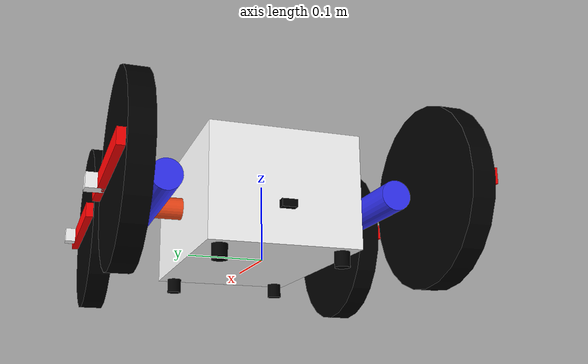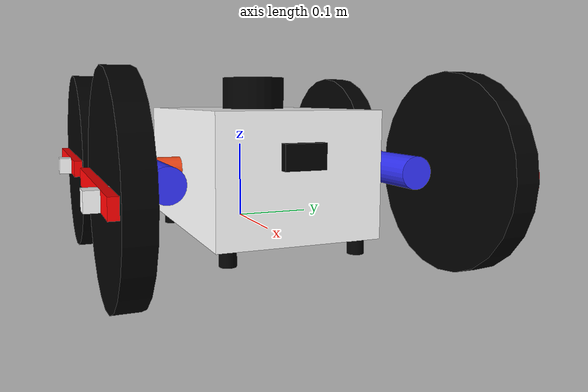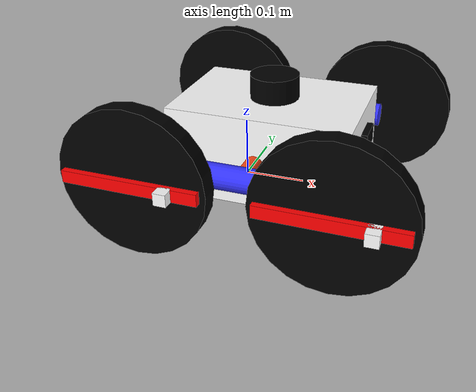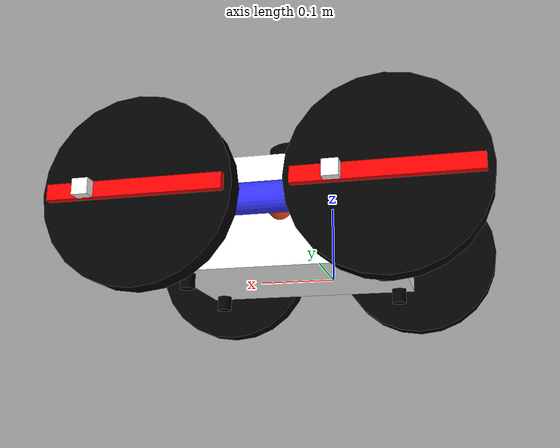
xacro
<?xml version="1.0"?>
<robot xmlns:xacro="http://www.ros.org/wiki/xacro" name="aeroterrabot">

    <!-- ── Xacro arguments ─────────────────────────────────────────────── -->
    <xacro:arg name="use_sim_time" default="false" />
    <xacro:property name="use_sim" value="$(arg use_sim_time)" />

    <!-- Include the core robot components -->
    <xacro:include filename="robot_core.xacro" />

    <!-- Include the materials for visuals -->
    <xacro:include filename="materials.xacro" />

    <!-- Include the ros2_control configuration -->
    <xacro:include filename="ros2_control.xacro" />

    <!-- Include the sensors configuration -->
    <xacro:include filename="sensors.xacro" />

    <!-- Parameterize the hardware interface -->
    <xacro:aeroterrabot_ros2_control
        serial_port="/dev/ttyACM0"
        baud_rate="115200"
        use_sim="${use_sim}"
    />

</robot>

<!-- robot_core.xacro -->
<robot xmlns:xacro="http://www.ros.org/wiki/xacro">

  <xacro:include filename="inertias.xacro" />

  <!-- ── BASE LINKS ────────────────────────────────────────────────────────── -->
  <link name="base_link"></link>

  <joint name="base_footprint_joint" type="fixed">
    <parent link="base_link"/>
    <child link="base_footprint"/>
    <origin xyz="0 0 0" rpy="0 0 0"/>
  </joint>

  <link name="base_footprint"></link>

  <joint name="chassis_joint" type="fixed">
    <parent link="base_link"/>
    <child link="chassis"/>
    <origin xyz="-0.1 0 0"/>
  </joint>

  <link name="chassis">
    <visual>
      <origin xyz="0.15 0 0.075"/>
      <geometry>
        <box size="0.3 0.2 0.15"/>
      </geometry>
      <material name="white"/>
    </visual>
    <collision>
      <origin xyz="0.15 0 0.075"/>
      <geometry>
        <box size="0.3 0.2 0.15"/>
      </geometry>
    </collision>
    <xacro:inertial_box mass="1.0" x="0.3" y="0.2" z="0.15">
      <origin xyz="0.15 0 0.075" rpy="0 0 0"/>
    </xacro:inertial_box>
  </link>

  <!-- ── LANDING GEAR ────────────────────────────────────────────────────────── -->
  <xacro:macro name="landing_gear_leg" params="name x y">
    <joint name="landing_gear_${name}_joint" type="fixed">
      <parent link="chassis"/>
      <child link="landing_gear_${name}"/>
      <origin xyz="${x} ${y} -0.01" rpy="0 0 0"/>
    </joint>

    <link name="landing_gear_${name}">
      <visual>
        <origin xyz="0 0 0" rpy="0 0 0"/>
        <geometry><cylinder radius="0.01" length="0.02"/></geometry>
        <material name="black"/>
      </visual>
      <collision>
        <origin xyz="0 0 0" rpy="0 0 0"/>
        <geometry><cylinder radius="0.01" length="0.02"/></geometry>
      </collision>
      <xacro:inertial_cylinder mass="0.05" length="0.02" radius="0.01">
        <origin xyz="0 0 0" rpy="0 0 0"/>
      </xacro:inertial_cylinder>
    </link>
  </xacro:macro>

  <xacro:landing_gear_leg name="front_left" x="0.28" y="0.08" />
  <xacro:landing_gear_leg name="front_right" x="0.28" y="-0.08" />
  <xacro:landing_gear_leg name="rear_left" x="0.02" y="0.08" />
  <xacro:landing_gear_leg name="rear_right" x="0.02" y="-0.08" />

  <!-- ── LEFT MORPHING MECHANISM ────────────────────────────────────────────── -->
  <!-- Actuator pushes left boom outwards. Servo rolls it 90 degrees to point wheels UP. -->
  <joint name="linear_actuator_1_joint" type="prismatic">
    <parent link="chassis"/>
    <child link="left_extension_arm"/>
    <origin xyz="0.15 0.1 0.075" rpy="0 0 0"/>
    <axis xyz="0 1 0"/>
    <limit lower="0" upper="0.1" effort="10" velocity="0.05"/>
  </joint>

  <link name="left_extension_arm">
    <visual>
      <origin xyz="0 0.025 0" rpy="1.5708 0 0"/>
      <geometry><cylinder length="0.05" radius="0.015"/></geometry>
      <material name="orange"/>
    </visual>
    <xacro:inertial_cylinder mass="0.1" length="0.05" radius="0.015">
      <origin xyz="0 0.025 0" rpy="1.5708 0 0"/>
    </xacro:inertial_cylinder>
  </link>

  <joint name="morph_servo_1_joint" type="revolute">
    <parent link="left_extension_arm"/>
    <child link="left_boom"/>
    <origin xyz="0 0.05 0" rpy="0 0 0"/>
    <axis xyz="1 0 0"/>
    <limit lower="0" upper="1.5708" effort="10" velocity="1.0"/>
  </joint>

  <link name="left_boom">
    <visual>
      <origin xyz="0 0 0" rpy="0 1.5708 0"/>
      <geometry><cylinder length="0.3" radius="0.02"/></geometry>
      <material name="blue"/>
    </visual>
    <xacro:inertial_cylinder mass="0.2" length="0.3" radius="0.02">
      <origin xyz="0 0 0" rpy="0 1.5708 0"/>
    </xacro:inertial_cylinder>
  </link>

  <!-- ── RIGHT MORPHING MECHANISM ───────────────────────────────────────────── -->

  <joint name="linear_actuator_2_joint" type="prismatic">
    <parent link="chassis"/>
    <child link="right_extension_arm"/>
    <origin xyz="0.15 -0.1 0.075" rpy="0 0 0"/>
    <axis xyz="0 -1 0"/>
    <limit lower="0" upper="0.1" effort="10" velocity="0.05"/>
  </joint>

  <link name="right_extension_arm">
    <visual>
      <origin xyz="0 -0.025 0" rpy="1.5708 0 0"/>
      <geometry><cylinder length="0.05" radius="0.015"/></geometry>
      <material name="orange"/>
    </visual>
    <xacro:inertial_cylinder mass="0.1" length="0.05" radius="0.015">
      <origin xyz="0 -0.025 0" rpy="1.5708 0 0"/>
    </xacro:inertial_cylinder>
  </link>

  <joint name="morph_servo_2_joint" type="revolute">
    <parent link="right_extension_arm"/>
    <child link="right_boom"/>
    <origin xyz="0 -0.05 0" rpy="0 0 0"/>
    <axis xyz="-1 0 0"/>
    <limit lower="0" upper="1.5708" effort="10" velocity="1.0"/>
  </joint>

  <link name="right_boom">
    <visual>
      <origin xyz="0 0 0" rpy="0 1.5708 0"/>
      <geometry><cylinder length="0.3" radius="0.02"/></geometry>
      <material name="blue"/>
    </visual>
    <xacro:inertial_cylinder mass="0.2" length="0.3" radius="0.02">
      <origin xyz="0 0 0" rpy="0 1.5708 0"/>
    </xacro:inertial_cylinder>
  </link>

  <!-- ── WHEELS & PROPELLOR GUARDS (R=0.12) ────────────────────────────────── -->
  <!-- We use continuous joints to permit driving. -->

  <joint name="front_left_wheel_joint" type="continuous">
    <parent link="left_boom"/>
    <child link="front_left_wheel"/>
    <origin xyz="0.15 0.05 0" rpy="-1.5708 0 0"/>
    <axis xyz="0 0 1"/>
  </joint>

  <link name="front_left_wheel">
    <visual>
      <geometry><cylinder length="0.03" radius="0.12"/></geometry>
      <material name="black"/>
    </visual>
    <!-- Spoke to make rotation visible -->
    <visual>
      <origin xyz="0.06 0 0.02" rpy="0 0 0"/>
      <geometry><box size="0.02 0.02 0.04"/></geometry>
      <material name="white"/>
    </visual>
    <collision>
      <geometry><cylinder length="0.03" radius="0.12"/></geometry>
    </collision>
    <xacro:inertial_cylinder mass="0.1" length="0.03" radius="0.12">
      <origin xyz="0 0 0" rpy="0 0 0"/>
    </xacro:inertial_cylinder>
  </link>

  <joint name="rear_left_wheel_joint" type="continuous">
    <parent link="left_boom"/>
    <child link="rear_left_wheel"/>
    <origin xyz="-0.15 0.05 0" rpy="-1.5708 0 0"/>
    <axis xyz="0 0 1"/>
  </joint>

  <link name="rear_left_wheel">
    <visual>
      <geometry><cylinder length="0.03" radius="0.12"/></geometry>
      <material name="black"/>
    </visual>
    <!-- Spoke to make rotation visible -->
    <visual>
      <origin xyz="0.06 0 0.02" rpy="0 0 0"/>
      <geometry><box size="0.02 0.02 0.04"/></geometry>
      <material name="white"/>
    </visual>
    <collision>
      <geometry><cylinder length="0.03" radius="0.12"/></geometry>
    </collision>
    <xacro:inertial_cylinder mass="0.1" length="0.03" radius="0.12">
      <origin xyz="0 0 0" rpy="0 0 0"/>
    </xacro:inertial_cylinder>
  </link>

  <joint name="front_right_wheel_joint" type="continuous">
    <parent link="right_boom"/>
    <child link="front_right_wheel"/>
    <origin xyz="0.15 -0.05 0" rpy="1.5708 0 0"/>
    <axis xyz="0 0 -1"/>
  </joint>

  <link name="front_right_wheel">
    <visual>
      <geometry><cylinder length="0.03" radius="0.12"/></geometry>
      <material name="black"/>
    </visual>
    <!-- Spoke to make rotation visible -->
    <visual>
      <origin xyz="0.06 0 0.02" rpy="0 0 0"/>
      <geometry><box size="0.02 0.02 0.04"/></geometry>
      <material name="white"/>
    </visual>
    <collision>
      <geometry><cylinder length="0.03" radius="0.12"/></geometry>
    </collision>
    <xacro:inertial_cylinder mass="0.1" length="0.03" radius="0.12">
      <origin xyz="0 0 0" rpy="0 0 0"/>
    </xacro:inertial_cylinder>
  </link>

  <joint name="rear_right_wheel_joint" type="continuous">
    <parent link="right_boom"/>
    <child link="rear_right_wheel"/>
    <origin xyz="-0.15 -0.05 0" rpy="1.5708 0 0"/>
    <axis xyz="0 0 -1"/>
  </joint>

  <link name="rear_right_wheel">
    <visual>
      <geometry><cylinder length="0.03" radius="0.12"/></geometry>
      <material name="black"/>
    </visual>
    <!-- Spoke to make rotation visible -->
    <visual>
      <origin xyz="0.06 0 0.02" rpy="0 0 0"/>
      <geometry><box size="0.02 0.02 0.04"/></geometry>
      <material name="white"/>
    </visual>
    <collision>
      <geometry><cylinder length="0.03" radius="0.12"/></geometry>
    </collision>
    <xacro:inertial_cylinder mass="0.1" length="0.03" radius="0.12">
      <origin xyz="0 0 0" rpy="0 0 0"/>
    </xacro:inertial_cylinder>
  </link>

  <!-- Gazebo Friction tags for wheels -->
  <gazebo reference="front_left_wheel">
    <mu1>1.0</mu1>
    <mu2>1.0</mu2>
  </gazebo>
  <gazebo reference="front_right_wheel">
    <mu1>1.0</mu1>
    <mu2>1.0</mu2>
  </gazebo>
  <gazebo reference="rear_left_wheel">
    <mu1>1.0</mu1>
    <mu2>1.0</mu2>
  </gazebo>
  <gazebo reference="rear_right_wheel">
    <mu1>1.0</mu1>
    <mu2>1.0</mu2>
  </gazebo>

  <!-- ── ROTORS ────────────────────────────────────────────────────────────── -->
  <!-- Rotors attach directly to the boom frame, avoiding rotation when driving -->

  <xacro:macro name="rotor" params="name parent *origin">
    <joint name="rotor_${name}_joint" type="continuous">
      <parent link="${parent}"/>
      <child link="rotor_${name}"/>
      <xacro:insert_block name="origin"/>
      <axis xyz="0 0 1"/>
    </joint>
    <link name="rotor_${name}">
      <visual>
        <origin xyz="0 0 0.02"/>
        <geometry>
          <box size="0.22 0.02 0.01"/>
        </geometry>
        <material name="red"/>
      </visual>
      <xacro:inertial_box mass="0.05" x="0.22" y="0.02" z="0.01">
        <origin xyz="0 0 0" rpy="0 0 0"/>
      </xacro:inertial_box>
    </link>
  </xacro:macro>

  <xacro:rotor name="front_left" parent="left_boom">
    <origin xyz="0.15 0.05 0" rpy="-1.5708 0 0"/>
  </xacro:rotor>

  <xacro:rotor name="rear_left" parent="left_boom">
    <origin xyz="-0.15 0.05 0" rpy="-1.5708 0 0"/>
  </xacro:rotor>

  <xacro:rotor name="front_right" parent="right_boom">
    <origin xyz="0.15 -0.05 0" rpy="1.5708 0 0"/>
  </xacro:rotor>

  <xacro:rotor name="rear_right" parent="right_boom">
    <origin xyz="-0.15 -0.05 0" rpy="1.5708 0 0"/>
  </xacro:rotor>

</robot>

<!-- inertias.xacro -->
<robot xmlns:xacro="http://www.ros.org/wiki/xacro">

  <!-- Intertia macros for common shapes -->
  <xacro:macro name="inertial_sphere" params="mass radius *origin">
    <inertial>
      <xacro:insert_block name="origin"/>
      <mass value="${mass}" />
      <inertia ixx="${(2/5) * mass * (radius*radius)}" ixy="0.0" ixz="0.0"
               iyy="${(2/5) * mass * (radius*radius)}" iyz="0.0"
               izz="${(2/5) * mass * (radius*radius)}" />
    </inertial>
  </xacro:macro>

  <xacro:macro name="inertial_box" params="mass x y z *origin">
    <inertial>
      <xacro:insert_block name="origin"/>
      <mass value="${mass}" />
      <inertia ixx="${(1/12) * mass * (y*y+z*z)}" ixy="0.0" ixz="0.0"
               iyy="${(1/12) * mass * (x*x+z*z)}" iyz="0.0"
               izz="${(1/12) * mass * (x*x+y*y)}" />
    </inertial>
  </xacro:macro>

  <xacro:macro name="inertial_cylinder" params="mass length radius *origin">
    <inertial>
      <xacro:insert_block name="origin"/>
      <mass value="${mass}" />
      <inertia ixx="${(1/12) * mass * (3*radius*radius + length*length)}" ixy="0.0" ixz="0.0"
               iyy="${(1/12) * mass * (3*radius*radius + length*length)}" iyz="0.0"
               izz="${(1/2) * mass * (radius*radius)}" />
    </inertial>
  </xacro:macro>

</robot>

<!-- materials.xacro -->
<robot xmlns:xacro="http://www.ros.org/wiki/xacro">

  <material name="white">
    <color rgba="1 1 1 1" />
  </material>

  <material name="orange">
    <color rgba="1 0.3 0.1 1" />
  </material>

  <material name="blue">
    <color rgba="0.2 0.2 1 1" />
  </material>

  <material name="black">
    <color rgba="0 0 0 1" />
  </material>

  <material name="red">
    <color rgba="1 0 0 1" />
  </material>

</robot>

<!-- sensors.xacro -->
<robot xmlns:xacro="http://www.ros.org/wiki/xacro">

  <!-- ── IMU SENSOR ────────────────────────────────────────────────────────── -->
  <joint name="imu_joint" type="fixed">
    <parent link="chassis"/>
    <child link="imu_link"/>
    <origin xyz="0 0 0.05" rpy="0 0 0"/>
  </joint>

  <link name="imu_link">
    <visual>
      <geometry><box size="0.02 0.02 0.01"/></geometry>
      <material name="black"/>
    </visual>
  </link>

  <gazebo reference="imu_link">
    <sensor name="imu_sensor" type="imu">
      <always_on>1</always_on>
      <update_rate>100</update_rate>
      <visualize>true</visualize>
      <topic>imu/data</topic>
    </sensor>
  </gazebo>

  <!-- ── CAMERA SENSOR ─────────────────────────────────────────────────────── -->
  <joint name="camera_joint" type="fixed">
    <parent link="chassis"/>
    <child link="camera_link"/>
    <origin xyz="0.3 0 0.1" rpy="0 0 0"/> <!-- Placed at the front of the chassis -->
  </joint>

  <link name="camera_link">
    <visual>
      <geometry><box size="0.02 0.05 0.03"/></geometry>
      <material name="black"/>
    </visual>
  </link>

  <joint name="camera_optical_joint" type="fixed">
    <parent link="camera_link"/>
    <child link="camera_link_optical"/>
    <origin xyz="0 0 0" rpy="-1.5708 0 -1.5708"/>
  </joint>

  <link name="camera_link_optical"></link>

  <gazebo reference="camera_link">
    <sensor name="front_camera" type="camera">
      <always_on>1</always_on>
      <update_rate>30</update_rate>
      <visualize>true</visualize>
      <topic>camera/image_raw</topic>
      <camera>
        <horizontal_fov>1.3962634</horizontal_fov>
        <image>
          <width>800</width>
          <height>800</height>
          <format>R8G8B8</format>
        </image>
        <clip>
          <near>0.02</near>
          <far>300</far>
        </clip>
      </camera>
    </sensor>
  </gazebo>

  <!-- ── LIDAR SENSOR ──────────────────────────────────────────────────────── -->
  <joint name="laser_joint" type="fixed">
    <parent link="chassis"/>
    <child link="laser_frame"/>
    <origin xyz="0.15 0 0.17" rpy="0 0 0"/> <!-- Mounted on top of chassis -->
  </joint>

  <link name="laser_frame">
    <visual>
      <geometry><cylinder radius="0.04" length="0.04"/></geometry>
      <material name="black"/>
    </visual>
  </link>

  <gazebo reference="laser_frame">
    <sensor name="laser" type="gpu_lidar">
      <always_on>1</always_on>
      <update_rate>10</update_rate>
      <visualize>true</visualize>
      <topic>scan</topic>
      <lidar>
        <scan>
          <horizontal>
            <samples>360</samples>
            <resolution>1</resolution>
            <min_angle>-3.14159</min_angle>
            <max_angle>3.14159</max_angle>
          </horizontal>
        </scan>
        <range>
          <min>0.3</min>
          <max>12.0</max>
          <resolution>0.01</resolution>
        </range>
      </lidar>
    </sensor>
  </gazebo>

</robot>
